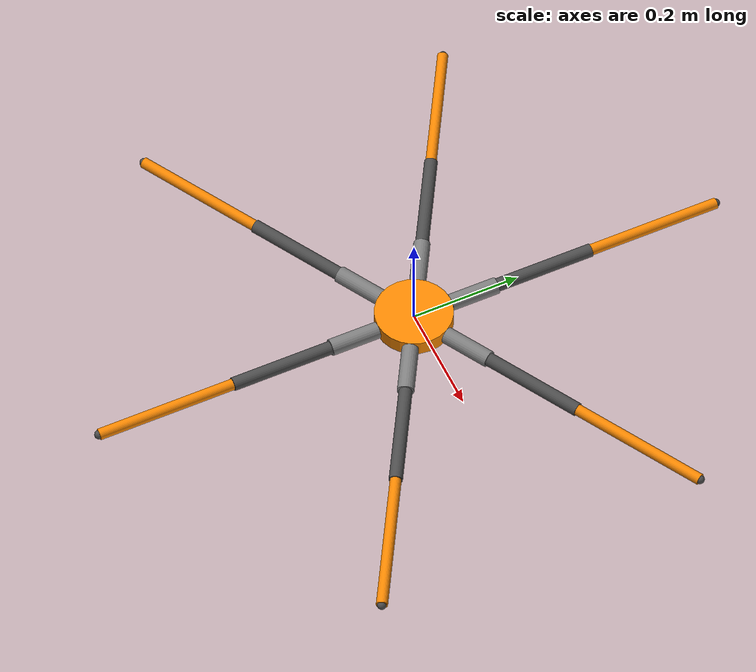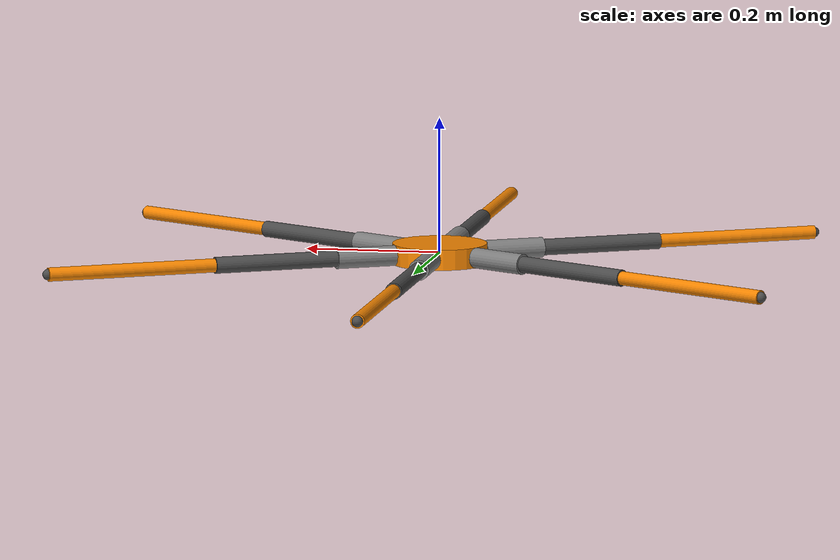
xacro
<?xml version="1.0"?>
<robot xmlns:xacro="http://www.ros.org/wiki/xacro" name="hexapod">

  <!-- ============ PARAMETERS ============ -->
  <xacro:property name="body_radius" value="0.07"/>
  <xacro:property name="body_height" value="0.03"/>
  <xacro:property name="body_mass" value="0.9"/>

  <xacro:property name="coxa_length" value="0.09"/>
  <xacro:property name="femur_length" value="0.185"/>
  <xacro:property name="tibia_length" value="0.250"/>

  <xacro:property name="coxa_radius" value="0.015"/>
  <xacro:property name="femur_radius" value="0.012"/>
  <xacro:property name="tibia_radius" value="0.010"/>

  <xacro:property name="leg_mass" value="0.08"/>
  <xacro:property name="joint_effort" value="1.5"/>
  <xacro:property name="joint_velocity" value="6.28"/>

  <!-- ============ MATERIALS ============ -->
  <material name="orange">
    <color rgba="0.97 0.53 0.004 1.0"/>
  </material>
  <material name="grey">
    <color rgba="0.5 0.5 0.5 1.0"/>
  </material>
  <material name="dark_grey">
    <color rgba="0.3 0.3 0.3 1.0"/>
  </material>

  <!-- ============ INERTIA HELPERS ============ -->
  <xacro:macro name="cylinder_inertia" params="mass radius length">
    <inertial>
      <mass value="${mass}"/>
      <inertia
        ixx="${mass*(3*radius*radius + length*length)/12}" ixy="0" ixz="0"
        iyy="${mass*(3*radius*radius + length*length)/12}" iyz="0"
        izz="${mass*radius*radius/2}"/>
    </inertial>
  </xacro:macro>

  <xacro:macro name="box_inertia" params="mass x y z">
    <inertial>
      <mass value="${mass}"/>
      <inertia
        ixx="${mass*(y*y+z*z)/12}" ixy="0" ixz="0"
        iyy="${mass*(x*x+z*z)/12}" iyz="0"
        izz="${mass*(x*x+y*y)/12}"/>
    </inertial>
  </xacro:macro>

  <!-- ============ BODY ============ -->
  <link name="base_link">
    <visual>
      <geometry>
        <cylinder radius="${body_radius}" length="${body_height}"/>
      </geometry>
      <material name="orange"/>
    </visual>
    <collision>
      <geometry>
        <cylinder radius="${body_radius}" length="${body_height}"/>
      </geometry>
    </collision>
    <xacro:box_inertia mass="${body_mass}" x="${2*body_radius}" y="${2*body_radius}" z="${body_height}"/>
  </link>

  <!-- ============ LEG MACRO ============ -->
  <xacro:macro name="hexapod_leg" params="prefix mount_x mount_y mount_angle">

    <!-- COXA -->
    <link name="${prefix}_coxa_link">
      <visual>
        <origin xyz="${coxa_length/2} 0 0" rpy="0 ${pi/2} 0"/>
        <geometry>
          <cylinder radius="${coxa_radius}" length="${coxa_length}"/>
        </geometry>
        <material name="grey"/>
      </visual>
      <collision>
        <origin xyz="${coxa_length/2} 0 0" rpy="0 ${pi/2} 0"/>
        <geometry>
          <cylinder radius="${coxa_radius}" length="${coxa_length}"/>
        </geometry>
      </collision>
      <xacro:cylinder_inertia mass="${leg_mass}" radius="${coxa_radius}" length="${coxa_length}"/>
    </link>

    <joint name="${prefix}_coxa_joint" type="revolute">
      <parent link="base_link"/>
      <child link="${prefix}_coxa_link"/>
      <origin xyz="${mount_x} ${mount_y} 0" rpy="0 0 ${mount_angle}"/>
      <axis xyz="0 0 1"/>
      <limit lower="${-pi/3}" upper="${pi/3}" effort="${joint_effort}" velocity="${joint_velocity}"/>
    </joint>

    <!-- FEMUR -->
    <link name="${prefix}_femur_link">
      <visual>
        <origin xyz="${femur_length/2} 0 0" rpy="0 ${pi/2} 0"/>
        <geometry>
          <cylinder radius="${femur_radius}" length="${femur_length}"/>
        </geometry>
        <material name="dark_grey"/>
      </visual>
      <collision>
        <origin xyz="${femur_length/2} 0 0" rpy="0 ${pi/2} 0"/>
        <geometry>
          <cylinder radius="${femur_radius}" length="${femur_length}"/>
        </geometry>
      </collision>
      <xacro:cylinder_inertia mass="${leg_mass}" radius="${femur_radius}" length="${femur_length}"/>
    </link>

    <joint name="${prefix}_femur_joint" type="revolute">
      <parent link="${prefix}_coxa_link"/>
      <child link="${prefix}_femur_link"/>
      <origin xyz="${coxa_length} 0 0" rpy="0 0 0"/>
      <axis xyz="0 1 0"/>
      <limit lower="${-pi/2}" upper="${pi/2}" effort="${joint_effort}" velocity="${joint_velocity}"/>
    </joint>

    <!-- TIBIA -->
    <link name="${prefix}_tibia_link">
      <visual>
        <origin xyz="${tibia_length/2} 0 0" rpy="0 ${pi/2} 0"/>
        <geometry>
          <cylinder radius="${tibia_radius}" length="${tibia_length}"/>
        </geometry>
        <material name="orange"/>
      </visual>
      <collision>
        <origin xyz="${tibia_length/2} 0 0" rpy="0 ${pi/2} 0"/>
        <geometry>
          <cylinder radius="${tibia_radius}" length="${tibia_length}"/>
        </geometry>
      </collision>
      <xacro:cylinder_inertia mass="${leg_mass}" radius="${tibia_radius}" length="${tibia_length}"/>
    </link>

    <joint name="${prefix}_tibia_joint" type="revolute">
      <parent link="${prefix}_femur_link"/>
      <child link="${prefix}_tibia_link"/>
      <origin xyz="${femur_length} 0 0" rpy="0 0 0"/>
      <axis xyz="0 1 0"/>
      <limit lower="${-2*pi/3}" upper="${pi/6}" effort="${joint_effort}" velocity="${joint_velocity}"/>
    </joint>

    <!-- FOOT (virtual link for tip tracking) -->
    <link name="${prefix}_foot_link">
      <visual>
        <geometry>
          <sphere radius="0.008"/>
        </geometry>
        <material name="dark_grey"/>
      </visual>
    </link>

    <joint name="${prefix}_foot_fixed" type="fixed">
      <parent link="${prefix}_tibia_link"/>
      <child link="${prefix}_foot_link"/>
      <origin xyz="${tibia_length} 0 0" rpy="0 0 0"/>
    </joint>

  </xacro:macro>

  <!-- ============ INSTANTIATE 6 LEGS ============ -->
  <!-- Leg numbering: 1=right_front, 2=right_middle, 3=right_rear,
                      4=left_rear, 5=left_middle, 6=left_front -->

  <xacro:hexapod_leg prefix="leg1"
    mount_x="${body_radius * cos(-pi/6)}"
    mount_y="${body_radius * sin(-pi/6)}"
    mount_angle="${-pi/6}"/>

  <xacro:hexapod_leg prefix="leg2"
    mount_x="${body_radius * cos(-pi/2)}"
    mount_y="${body_radius * sin(-pi/2)}"
    mount_angle="${-pi/2}"/>

  <xacro:hexapod_leg prefix="leg3"
    mount_x="${body_radius * cos(-5*pi/6)}"
    mount_y="${body_radius * sin(-5*pi/6)}"
    mount_angle="${-5*pi/6}"/>

  <xacro:hexapod_leg prefix="leg4"
    mount_x="${body_radius * cos(5*pi/6)}"
    mount_y="${body_radius * sin(5*pi/6)}"
    mount_angle="${5*pi/6}"/>

  <xacro:hexapod_leg prefix="leg5"
    mount_x="${body_radius * cos(pi/2)}"
    mount_y="${body_radius * sin(pi/2)}"
    mount_angle="${pi/2}"/>

  <xacro:hexapod_leg prefix="leg6"
    mount_x="${body_radius * cos(pi/6)}"
    mount_y="${body_radius * sin(pi/6)}"
    mount_angle="${pi/6}"/>

</robot>
